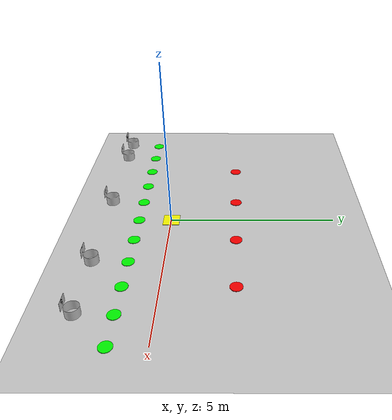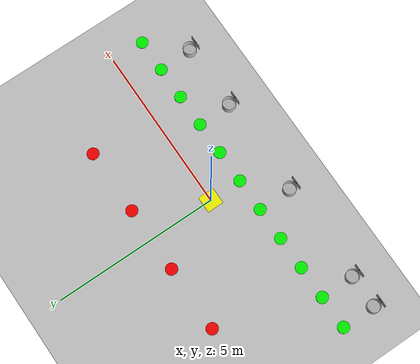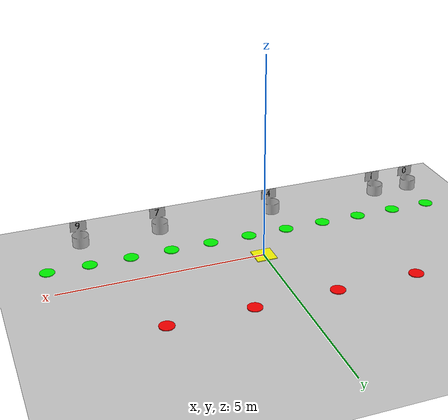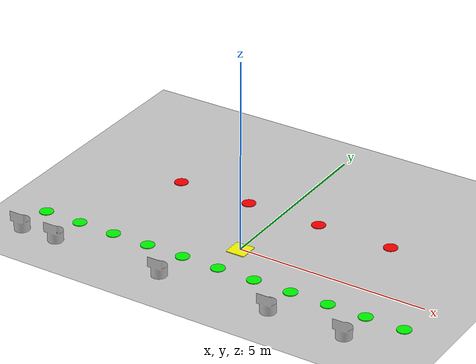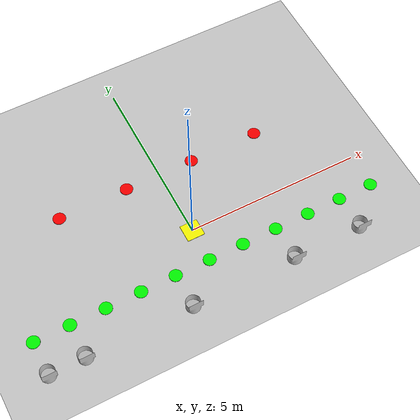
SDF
<sdf version="1.7">
 <world name="default">
  <plugin name="ros_link_attacher_plugin" filename="libgazebo_ros_link_attacher.so"/>
  <light name="sun" type="directional">
   <pose>0 0 10 0 -0 0</pose>
   <diffuse>0.8 0.8 0.8 1</diffuse>
   <specular>0.2 0.2 0.2 1</specular>
   <attenuation>
    <range>1000</range>
    <constant>0.9</constant>
    <linear>0.01</linear>
    <quadratic>0.001</quadratic>
   </attenuation>
   <direction>-0.5 0.1 -0.9</direction>
   <spot><inner_angle>0</inner_angle><outer_angle>0</outer_angle><falloff>0</falloff></spot>
  </light>
  <model name="ground_plane">
   <static>1</static>
   <link name="link">
    <collision name="collision">
     <geometry><plane><normal>0 0 1</normal><size>100 100</size></plane></geometry>
     <surface>
      <contact><collide_bitmask>65535</collide_bitmask></contact>
      <friction><ode><mu>100</mu><mu2>50</mu2></ode></friction>
     </surface>
    </collision>
    <visual name="visual">
     <cast_shadows>0</cast_shadows>
     <geometry><plane><normal>0 0 1</normal><size>100 100</size></plane></geometry>
     <material>
      <ambient>0 0 0 1</ambient>
      <diffuse>0 0 0 1</diffuse>
      <specular>0 0 0 1</specular>
      <emissive>0 0 0 0</emissive>
      <script><uri>file://media/materials/scripts/gazebo.material</uri><name>Gazebo/Grey</name></script>
     </material>
    </visual>
   </link>
  </model>
  <gravity>0 0 -9.8</gravity>
  <magnetic_field>6e-06 2.3e-05 -4.2e-05</magnetic_field>
  <atmosphere type="adiabatic"/>
  <physics type="ode">
   <max_step_size>0.002</max_step_size>
   <real_time_factor>1</real_time_factor>
   <real_time_update_rate>500</real_time_update_rate>
  </physics>
  <scene><ambient>0.4 0.4 0.4 1</ambient><background>0.7 0.7 0.7 1</background><shadows>1</shadows></scene>
  <spherical_coordinates>
   <surface_model>EARTH_WGS84</surface_model>
   <latitude_deg>0</latitude_deg>
   <longitude_deg>0</longitude_deg>
   <elevation>0</elevation>
   <heading_deg>0</heading_deg>
  </spherical_coordinates>
  <model name="start_zone">
   <static>1</static>
   <link name="link">
    <visual name="visual">
     <geometry><box><size>0.5 0.5 0.02</size></box></geometry>
     <material>
      <ambient>1 1 0 1</ambient>
      <diffuse>1 1 0 1</diffuse>
      <specular>0.1 0.1 0.1 1</specular>
      <emissive>0 0 0 0</emissive>
      <script><uri>file://media/materials/scripts/gazebo.material</uri><name>__default__</name></script>
     </material>
    </visual>
   </link>
  </model>
  <model name="zone_1">
   <pose>-3 2 0 0 -0 0</pose>
   <static>1</static>
   <link name="link">
    <visual name="unit_cylinder">
     <geometry><cylinder><radius>0.18</radius><length>0.02</length></cylinder></geometry>
     <material>
      <ambient>1 0 0 1</ambient>
      <diffuse>1 0 0 1</diffuse>
      <specular>0.1 0.1 0.1 1</specular>
      <emissive>0 0 0 0</emissive>
      <script><uri>file://media/materials/scripts/gazebo.material</uri><name>__default__</name></script>
     </material>
    </visual>
   </link>
  </model>
  <model name="zone_2">
   <pose>-1 2 0 0 -0 0</pose>
   <static>1</static>
   <link name="link">
    <visual name="unit_cylinder">
     <geometry><cylinder><radius>0.18</radius><length>0.02</length></cylinder></geometry>
     <material>
      <ambient>1 0 0 1</ambient>
      <diffuse>1 0 0 1</diffuse>
      <specular>0.1 0.1 0.1 1</specular>
      <emissive>0 0 0 0</emissive>
      <script><uri>file://media/materials/scripts/gazebo.material</uri><name>__default__</name></script>
     </material>
    </visual>
   </link>
  </model>
  <model name="zone_3">
   <pose>1 2 0 0 -0 0</pose>
   <static>1</static>
   <link name="link">
    <visual name="unit_cylinder">
     <geometry><cylinder><radius>0.18</radius><length>0.02</length></cylinder></geometry>
     <material>
      <ambient>1 0 0 1</ambient>
      <diffuse>1 0 0 1</diffuse>
      <specular>0.1 0.1 0.1 1</specular>
      <emissive>0 0 0 0</emissive>
      <script><uri>file://media/materials/scripts/gazebo.material</uri><name>__default__</name></script>
     </material>
    </visual>
   </link>
  </model>
  <model name="zone_4">
   <pose>3 2 0 0 -0 0</pose>
   <static>1</static>
   <link name="link">
    <visual name="unit_cylinder">
     <geometry><cylinder><radius>0.18</radius><length>0.02</length></cylinder></geometry>
     <material>
      <ambient>1 0 0 1</ambient>
      <diffuse>1 0 0 1</diffuse>
      <specular>0.1 0.1 0.1 1</specular>
      <emissive>0 0 0 0</emissive>
      <script><uri>file://media/materials/scripts/gazebo.material</uri><name>__default__</name></script>
     </material>
    </visual>
   </link>
  </model>
  <model name="basket1x1x2">
   <static>1</static>
   <link name="link">
    <visual name="visual">
     <geometry><mesh><uri>model://Basket/meshes/basket1x1x2.dae</uri></mesh></geometry>
    </visual>
   </link>
   <pose>-5.0 -2.0 0 0 -0 0</pose>
  </model>
  <model name="basket1x2x1">
   <static>1</static>
   <link name="link">
    <visual name="visual">
     <geometry><mesh><uri>model://Basket/meshes/basket1x2x1.dae</uri></mesh></geometry>
    </visual>
   </link>
   <pose>-4.0 -2.0 0 0 -0 0</pose>
  </model>
  <model name="basket1x2x2Twinfillet">
   <static>1</static>
   <link name="link">
    <visual name="visual">
     <geometry><mesh><uri>model://Basket/meshes/basket1x2x2_twinfillet.dae</uri></mesh></geometry>
    </visual>
   </link>
   <pose>-1.0 -2.0 0 0 -0 0</pose>
  </model>
  <model name="basket1x4x1">
   <static>1</static>
   <link name="link">
    <visual name="visual">
     <geometry><mesh><uri>model://Basket/meshes/basket1x4x1.dae</uri></mesh></geometry>
    </visual>
   </link>
   <pose>2.0 -2.0 0 0 -0 0</pose>
  </model>
  <model name="basket2x2x2">
   <static>1</static>
   <link name="link">
    <visual name="visual">
     <geometry><mesh><uri>model://Basket/meshes/basket2x2x2.dae</uri></mesh></geometry>
    </visual>
   </link>
   <pose>4.0 -2.0 0 0 -0 0</pose>
  </model>
  <model name="zone_basket_1">
   <pose>-5.0 -1.0 0 0 -0 0</pose>
   <static>1</static>
   <link name="link">
    <visual name="unit_cylinder">
     <geometry><cylinder><radius>0.18</radius><length>0.02</length></cylinder></geometry>
     <material>
      <ambient>0 1 0 1</ambient>
      <diffuse>0 1 0 1</diffuse>
      <specular>0.1 0.1 0.1 1</specular>
      <emissive>0 0 0 0</emissive>
      <script><uri>file://media/materials/scripts/gazebo.material</uri><name>__default__</name></script>
     </material>
    </visual>
   </link>
  </model>
  <model name="zone__basket_2">
   <pose>-4.0 -1.0 0 0 -0 0</pose>
   <static>1</static>
   <link name="link">
    <visual name="unit_cylinder">
     <geometry><cylinder><radius>0.18</radius><length>0.02</length></cylinder></geometry>
     <material>
      <ambient>0 1 0 1</ambient>
      <diffuse>0 1 0 1</diffuse>
      <specular>0.1 0.1 0.1 1</specular>
      <emissive>0 0 0 0</emissive>
      <script><uri>file://media/materials/scripts/gazebo.material</uri><name>__default__</name></script>
     </material>
    </visual>
   </link>
  </model>
  <model name="zone_basket_3">
   <pose>-3.0 -1.0 0 0 -0 0</pose>
   <static>1</static>
   <link name="link">
    <visual name="unit_cylinder">
     <geometry><cylinder><radius>0.18</radius><length>0.02</length></cylinder></geometry>
     <material>
      <ambient>0 1 0 1</ambient>
      <diffuse>0 1 0 1</diffuse>
      <specular>0.1 0.1 0.1 1</specular>
      <emissive>0 0 0 0</emissive>
      <script><uri>file://media/materials/scripts/gazebo.material</uri><name>__default__</name></script>
     </material>
    </visual>
   </link>
  </model>
  <model name="zone_basket_4">
   <pose>-2.0 -1.0 0 0 -0 0</pose>
   <static>1</static>
   <link name="link">
    <visual name="unit_cylinder">
     <geometry><cylinder><radius>0.18</radius><length>0.02</length></cylinder></geometry>
     <material>
      <ambient>0 1 0 1</ambient>
      <diffuse>0 1 0 1</diffuse>
      <specular>0.1 0.1 0.1 1</specular>
      <emissive>0 0 0 0</emissive>
      <script><uri>file://media/materials/scripts/gazebo.material</uri><name>__default__</name></script>
     </material>
    </visual>
   </link>
  </model>
  <model name="zone__basket_5">
   <pose>-1.0 -1.0 0 0 -0 0</pose>
   <static>1</static>
   <link name="link">
    <visual name="unit_cylinder">
     <geometry><cylinder><radius>0.18</radius><length>0.02</length></cylinder></geometry>
     <material>
      <ambient>0 1 0 1</ambient>
      <diffuse>0 1 0 1</diffuse>
      <specular>0.1 0.1 0.1 1</specular>
      <emissive>0 0 0 0</emissive>
      <script><uri>file://media/materials/scripts/gazebo.material</uri><name>__default__</name></script>
     </material>
    </visual>
   </link>
  </model>
  <model name="zone_basket_6">
   <pose>0 -1.0 0 0 -0 0</pose>
   <static>1</static>
   <link name="link">
    <visual name="unit_cylinder">
     <geometry><cylinder><radius>0.18</radius><length>0.02</length></cylinder></geometry>
     <material>
      <ambient>0 1 0 1</ambient>
      <diffuse>0 1 0 1</diffuse>
      <specular>0.1 0.1 0.1 1</specular>
      <emissive>0 0 0 0</emissive>
      <script><uri>file://media/materials/scripts/gazebo.material</uri><name>__default__</name></script>
     </material>
    </visual>
   </link>
  </model>
  <model name="zone_basket_7">
   <pose>1.0 -1.0 0 0 -0 0</pose>
   <static>1</static>
   <link name="link">
    <visual name="unit_cylinder">
     <geometry><cylinder><radius>0.18</radius><length>0.02</length></cylinder></geometry>
     <material>
      <ambient>0 1 0 1</ambient>
      <diffuse>0 1 0 1</diffuse>
      <specular>0.1 0.1 0.1 1</specular>
      <emissive>0 0 0 0</emissive>
      <script><uri>file://media/materials/scripts/gazebo.material</uri><name>__default__</name></script>
     </material>
    </visual>
   </link>
  </model>
  <model name="zone_basket_8">
   <pose>2.0 -1.0 0 0 -0 0</pose>
   <static>1</static>
   <link name="link">
    <visual name="unit_cylinder">
     <geometry><cylinder><radius>0.18</radius><length>0.02</length></cylinder></geometry>
     <material>
      <ambient>0 1 0 1</ambient>
      <diffuse>0 1 0 1</diffuse>
      <specular>0.1 0.1 0.1 1</specular>
      <emissive>0 0 0 0</emissive>
      <script><uri>file://media/materials/scripts/gazebo.material</uri><name>__default__</name></script>
     </material>
    </visual>
   </link>
  </model>
  <model name="zone_basket_9">
   <pose>3.0 -1.0 0 0 -0 0</pose>
   <static>1</static>
   <link name="link">
    <visual name="unit_cylinder">
     <geometry><cylinder><radius>0.18</radius><length>0.02</length></cylinder></geometry>
     <material>
      <ambient>0 1 0 1</ambient>
      <diffuse>0 1 0 1</diffuse>
      <specular>0.1 0.1 0.1 1</specular>
      <emissive>0 0 0 0</emissive>
      <script><uri>file://media/materials/scripts/gazebo.material</uri><name>__default__</name></script>
     </material>
    </visual>
   </link>
  </model>
  <model name="zone_basket_10">
   <pose>4.0 -1.0 0 0 -0 0</pose>
   <static>1</static>
   <link name="link">
    <visual name="unit_cylinder">
     <geometry><cylinder><radius>0.18</radius><length>0.02</length></cylinder></geometry>
     <material>
      <ambient>0 1 0 1</ambient>
      <diffuse>0 1 0 1</diffuse>
      <specular>0.1 0.1 0.1 1</specular>
      <emissive>0 0 0 0</emissive>
      <script><uri>file://media/materials/scripts/gazebo.material</uri><name>__default__</name></script>
     </material>
    </visual>
   </link>
  </model>
  <model name="zone_basket_11">
   <pose>5.0 -1.0 0 0 -0 0</pose>
   <static>1</static>
   <link name="link">
    <visual name="unit_cylinder">
     <geometry><cylinder><radius>0.18</radius><length>0.02</length></cylinder></geometry>
     <material>
      <ambient>0 1 0 1</ambient>
      <diffuse>0 1 0 1</diffuse>
      <specular>0.1 0.1 0.1 1</specular>
      <emissive>0 0 0 0</emissive>
      <script><uri>file://media/materials/scripts/gazebo.material</uri><name>__default__</name></script>
     </material>
    </visual>
   </link>
  </model>
 </world>
</sdf>
